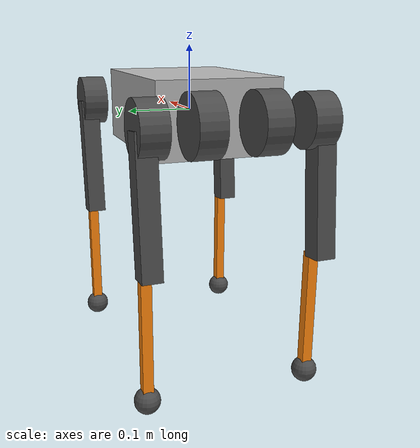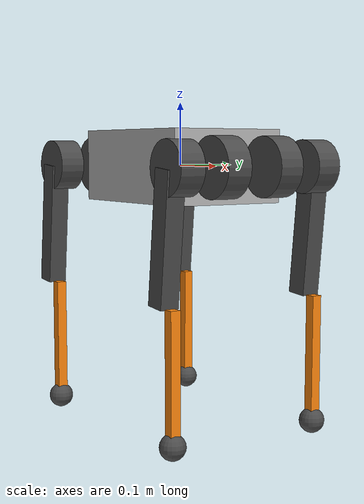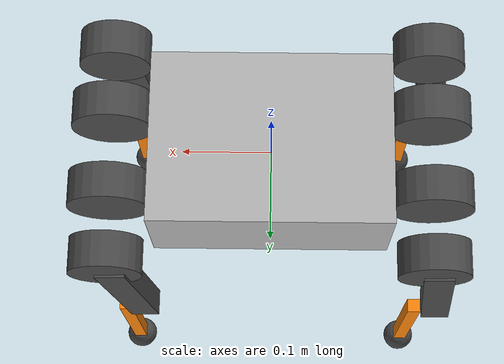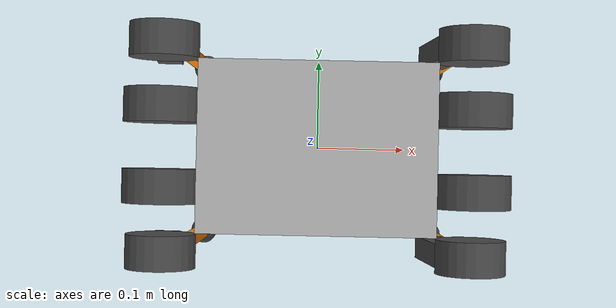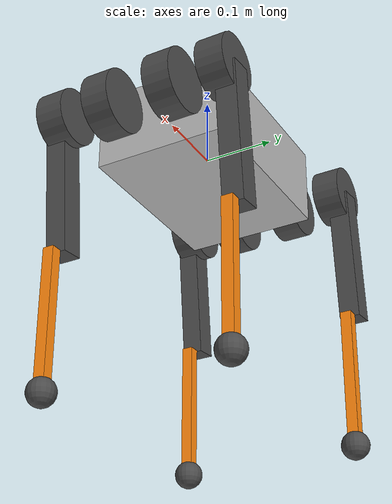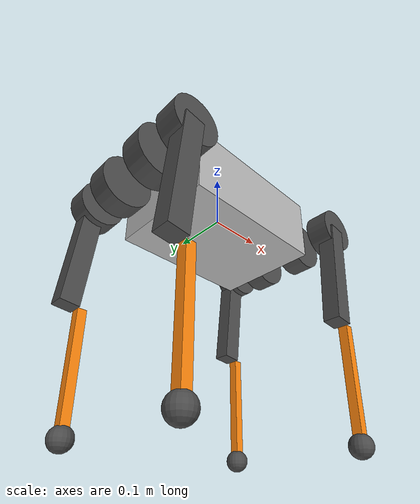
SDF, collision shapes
<sdf version='1.11'>
    <model name='robot'>
        <joint name='anchor_to_world' type='fixed'>
			<parent>world</parent>
			<child>base</child>
			<pose>0 0 0 0 0 0</pose>
		</joint>
        <!-- 悬挂模型，用于调试 -->
        <link name='base'>
            <inertial>
                <pose>0 0.004093178036605658 -0.00049916805324459247 0 0 0</pose>
                <mass>6.0099999999999998</mass>
                <inertia>
                    <ixx>0.01585447031613977</ixx>
                    <ixy>-3.6600000000000002e-05</ixy>
                    <ixz>-6.1099999999999994e-05</ixz>
                    <iyy>0.037800902495840269</iyy>
                    <iyz>-2.7479534109816971e-05</iyz>
                    <izz>0.045655367820299497</izz>
                </inertia>
            </inertial>
            <collision name='base_collision'>
                <pose>0 0 0 0 0 0</pose>
                <geometry>
                    <box>
                        <size>0.26700000000000002 0.19400000000000001 0.114</size>
                    </box>
                </geometry>
            </collision>
            <visual name='base_visual'>
                <pose>0 0 0 0 0 0</pose>
                <geometry>
                    <mesh>
                        <scale>1 1 1</scale>
                        <uri>
                            meshes/trunk.dae</uri>
                    </mesh>
                </geometry>
            </visual>
            <visual name='base_imu_visual_1'>
                <pose>0 0 0 0 0 0</pose>
                <geometry>
                    <box>
                        <size>0.014999999999999999 0.014999999999999999 0.0040000000000000001</size>
                    </box>
                </geometry>
            </visual>
            <sensor name="imu_sensor" type="imu">
                <always_on>1</always_on>
                <update_rate>1</update_rate>
                <visualize>true</visualize>
                <topic>/A1/imu</topic>
            </sensor>
        </link>
        <joint name='LF_HAA' type='revolute'>
            <pose relative_to='base'>0.18049999999999999 0.047 0 0 0 0</pose>
            <parent>base</parent>
            <child>LF_hip</child>
            <axis>
                <xyz>1 0 0</xyz>
                <limit>
                    <lower>-0.80285145591739149</lower>
                    <upper>0.80285145591739149</upper>
                    <effort>33.5</effort>
                    <velocity>21</velocity>
                </limit>
                <dynamics>
                    <damping>0.01</damping>
                    <friction>0.01</friction>
                    <spring_reference>0</spring_reference>
                    <spring_stiffness>0</spring_stiffness>
                </dynamics>
            </axis>
        </joint>
        <link name='LF_hip'>
            <pose relative_to='LF_HAA'>0 0 0 0 0 0</pose>
            <inertial>
                <pose>-0.003875 0.001622 4.1999999999999998e-05 0 0 0</pose>
                <mass>0.59499999999999997</mass>
                <inertia>
                    <ixx>0.00040274700000000001</ixx>
                    <ixy>-8.7090000000000008e-06</ixy>
                    <ixz>-2.9700000000000003e-07</ixz>
                    <iyy>0.00069112299999999998</iyy>
                    <iyz>-5.4499999999999997e-07</iyz>
                    <izz>0.00048791900000000002</izz>
                </inertia>
            </inertial>
            <collision name='LF_hip_collision'>
                <pose>0 0 0 1.5707963267948959 0 0</pose>
                <geometry>
                    <cylinder>
                        <length>0.040000000000000001</length>
                        <radius>0.045999999999999999</radius>
                    </cylinder>
                </geometry>
                <surface>
                    <contact>
                        <ode />
                    </contact>
                    <friction>
                        <ode>
                            <mu>0.20000000000000001</mu>
                            <mu2>0.20000000000000001</mu2>
                        </ode>
                    </friction>
                </surface>
            </collision>
            <visual name='LF_hip_visual'>
                <pose>0 0 0 0 0 0</pose>
                <geometry>
                    <mesh>
                        <scale>1 1 1</scale>
                        <uri>
                            meshes/hip.dae</uri>
                    </mesh>
                </geometry>
                <material>
                    <script>
                        <name>Gazebo/DarkGrey</name>
                        <uri>file://media/materials/scripts/gazebo.material</uri>
                    </script>
                    <diffuse>1 0.529411793 0.0490196086 1</diffuse>
                    <ambient>1 0.529411793 0.0490196086 1</ambient>
                </material>
            </visual>
        </link>
        <joint name='LF_HFE' type='revolute'>
            <pose relative_to='LF_hip'>0 0.083799999999999999 0 0 0 0</pose>
            <parent>LF_hip</parent>
            <child>LF_thigh</child>
            <axis>
                <xyz>0 1 0</xyz>
                <limit>
                    <lower>-1.0471975511965981</lower>
                    <upper>4.1887902047863914</upper>
                    <effort>33.5</effort>
                    <velocity>21</velocity>
                </limit>
                <dynamics>
                    <damping>0.01</damping>
                    <friction>0.01</friction>
                    <spring_reference>0</spring_reference>
                    <spring_stiffness>0</spring_stiffness>
                </dynamics>
            </axis>
        </joint>
        <link name='LF_thigh'>
            <pose relative_to='LF_HFE'>0 0 0 0 0 0</pose>
            <inertial>
                <pose>-0.0035739999999999999 -0.019529000000000001 -0.030322999999999999 0 0 0</pose>
                <mass>0.88800000000000001</mass>
                <inertia>
                    <ixx>0.0052518060000000004</ixx>
                    <ixy>-2.1679999999999998e-06</ixy>
                    <ixz>0.00034688900000000002</ixz>
                    <iyy>0.0050004749999999999</iyy>
                    <iyz>-2.8174000000000002e-05</iyz>
                    <izz>0.0011102</izz>
                </inertia>
            </inertial>
            <collision name='LF_thigh_collision'>
                <pose>-0.014999999999999999 0 -0.10000000000000001 3.1415926535897931
                    1.470796326794896 3.1415926535897931</pose>
                <geometry>
                    <box>
                        <size>0.20000000000000001 0.029999999999999999 0.034000000000000002</size>
                    </box>
                </geometry>
                <surface>
                    <contact>
                        <ode>
                            <kp>1000000</kp>
                            <kd>100</kd>
                        </ode>
                    </contact>
                    <friction>
                        <ode>
                            <mu>0.20000000000000001</mu>
                            <mu2>0.20000000000000001</mu2>
                        </ode>
                    </friction>
                </surface>
            </collision>
            <collision name='LF_thigh_collision_1'>
                <pose>0 -0.0080000000000000002 0 1.5707963267948959 0 0</pose>
                <geometry>
                    <cylinder>
                        <length>0.040000000000000001</length>
                        <radius>0.041000000000000002</radius>
                    </cylinder>
                </geometry>
                <surface>
                    <contact>
                        <ode>
                            <kp>1000000</kp>
                            <kd>100</kd>
                        </ode>
                    </contact>
                    <friction>
                        <ode>
                            <mu>0.20000000000000001</mu>
                            <mu2>0.20000000000000001</mu2>
                        </ode>
                    </friction>
                </surface>
            </collision>
            <visual name='LF_thigh_visual'>
                <pose>0 0 0 0 0 0</pose>
                <geometry>
                    <mesh>
                        <scale>1 1 1</scale>
                        <uri>
                            meshes/thigh.dae</uri>
                    </mesh>
                </geometry>
                <material>
                    <script>
                        <name>Gazebo/DarkGrey</name>
                        <uri>file://media/materials/scripts/gazebo.material</uri>
                    </script>
                    <diffuse>1 0.529411793 0.0490196086 1</diffuse>
                    <ambient>1 0.529411793 0.0490196086 1</ambient>
                </material>
            </visual>
            <self_collide>true</self_collide>
        </link>
        <joint name='LF_KFE' type='revolute'>
            <pose relative_to='LF_thigh'>0 0 -0.20000000000000001 0 0 0</pose>
            <parent>LF_thigh</parent>
            <child>LF_calf</child>
            <axis>
                <xyz>0 1 0</xyz>
                <limit>
                    <lower>-2.6965336943312388</lower>
                    <upper>-0.91629785729702307</upper>
                    <effort>33.5</effort>
                    <velocity>21</velocity>
                </limit>
                <dynamics>
                    <damping>0.01</damping>
                    <friction>0.01</friction>
                    <spring_reference>0</spring_reference>
                    <spring_stiffness>0</spring_stiffness>
                </dynamics>
            </axis>
        </joint>
        <link name='LF_calf'>
            <pose relative_to='LF_KFE'>0 0 0 0 0 0</pose>
            <inertial>
                <pose>0.0071050000000000002 -0.00023900000000000001 -0.096933000000000005 0 0 0</pose>
                <mass>0.151</mass>
                <inertia>
                    <ixx>0.0023447580000000002</ixx>
                    <ixy>0</ixy>
                    <ixz>-0.00014127500000000001</ixz>
                    <iyy>0.002360755</iyy>
                    <iyz>0</iyz>
                    <izz>3.1158000000000002e-05</izz>
                </inertia>
            </inertial>
            <collision name='LF_calf_collision'>
                <pose>0 0 -0.10000000000000001 0 1.5707963267948966 0</pose>
                <geometry>
                    <box>
                        <size>0.20000000000000001 0.016 0.016</size>
                    </box>
                </geometry>
                <surface>
                    <contact>
                        <ode />
                    </contact>
                    <friction>
                        <ode>
                            <mu>0.59999999999999998</mu>
                            <mu2>0.59999999999999998</mu2>
                        </ode>
                    </friction>
                </surface>
            </collision>
            <visual name='LF_calf_visual'>
                <pose>0 0 0 0 0 0</pose>
                <geometry>
                    <mesh>
                        <scale>1 1 1</scale>
                        <uri>
                            meshes/calf.dae</uri>
                    </mesh>
                </geometry>
                <material>
                    <diffuse>1 0.529411793 0.0490196086 1</diffuse>
                    <ambient>1 0.529411793 0.0490196086 1</ambient>
                </material>
            </visual>
            <self_collide>true</self_collide>
        </link>
        <joint name='LF_foot_fixed' type='revolute'>
            <pose relative_to='LF_calf'>0 0 -0.20000000000000001 0 0 0</pose>
            <parent>LF_calf</parent>
            <child>LF_FOOT</child>
            <axis>
                <limit>
                    <lower>0</lower>
                    <upper>0</upper>
                </limit>
                <dynamics>
                    <damping>0.01</damping>
                    <friction>0.01</friction>
                    <spring_reference>0</spring_reference>
                    <spring_stiffness>0</spring_stiffness>
                </dynamics>
                <xyz>0 0 1</xyz>
            </axis>
            <physics>
                <ode>
                    <limit>
                        <cfm>0</cfm>
                        <erp>0.20000000000000001</erp>
                    </limit>
                </ode>
            </physics>
        </joint>
        <link name='LF_FOOT'>
            <pose relative_to='LF_foot_fixed'>0 0 0 0 0 0</pose>
            <inertial>
                <pose>0 0 0 0 0 0</pose>
                <mass>0.059999999999999998</mass>
                <inertia>
                    <ixx>9.6000000000000013e-06</ixx>
                    <ixy>0</ixy>
                    <ixz>0</ixz>
                    <iyy>9.6000000000000013e-06</iyy>
                    <iyz>0</iyz>
                    <izz>9.6000000000000013e-06</izz>
                </inertia>
            </inertial>
            <collision name='LF_FOOT_collision'>
                <pose>0 0 0 0 0 0</pose>
                <geometry>
                    <sphere>
                        <radius>0.02</radius>
                    </sphere>
                </geometry>
                <surface>
                    <contact>
                        <ode>
                            <kp>1000000</kp>
                            <kd>100</kd>
                        </ode>
                    </contact>
                    <friction>
                        <ode>
                            <mu>0.59999999999999998</mu>
                            <mu2>0.59999999999999998</mu2>
                        </ode>
                    </friction>
                </surface>
            </collision>
            <visual name='LF_FOOT_visual'>
                <pose>0 0 0 0 0 0</pose>
                <geometry>
                    <sphere>
                        <radius>0.01</radius>
                    </sphere>
                </geometry>
                <material>
                    <script>
                        <name>Gazebo/DarkGrey</name>
                        <uri>file://media/materials/scripts/gazebo.material</uri>
                    </script>
                    <diffuse>1 0.529411793 0.0490196086 1</diffuse>
                    <ambient>1 0.529411793 0.0490196086 1</ambient>
                </material>
            </visual>
            <self_collide>true</self_collide>
        </link>
        <joint name='LH_HAA' type='revolute'>
            <pose relative_to='base'>-0.18049999999999999 0.047 0 0 0 0</pose>
            <parent>base</parent>
            <child>LH_hip</child>
            <axis>
                <xyz>1 0 0</xyz>
                <limit>
                    <lower>-0.80285145591739149</lower>
                    <upper>0.80285145591739149</upper>
                    <effort>33.5</effort>
                    <velocity>21</velocity>
                </limit>
                <dynamics>
                    <damping>0.01</damping>
                    <friction>0.01</friction>
                    <spring_reference>0</spring_reference>
                    <spring_stiffness>0</spring_stiffness>
                </dynamics>
            </axis>
        </joint>
        <link name='LH_hip'>
            <pose relative_to='LH_HAA'>0 0 0 0 0 0</pose>
            <inertial>
                <pose>0.003875 0.001622 4.1999999999999998e-05 0 0 0</pose>
                <mass>0.59499999999999997</mass>
                <inertia>
                    <ixx>0.00040274700000000001</ixx>
                    <ixy>8.7090000000000008e-06</ixy>
                    <ixz>2.9700000000000003e-07</ixz>
                    <iyy>0.00069112299999999998</iyy>
                    <iyz>-5.4499999999999997e-07</iyz>
                    <izz>0.00048791900000000002</izz>
                </inertia>
            </inertial>
            <collision name='LH_hip_collision'>
                <pose>0 0 0 1.5707963267948959 0 0</pose>
                <geometry>
                    <cylinder>
                        <length>0.040000000000000001</length>
                        <radius>0.045999999999999999</radius>
                    </cylinder>
                </geometry>
                <surface>
                    <contact>
                        <ode />
                    </contact>
                    <friction>
                        <ode>
                            <mu>0.20000000000000001</mu>
                            <mu2>0.20000000000000001</mu2>
                        </ode>
                    </friction>
                </surface>
            </collision>
            <visual name='LH_hip_visual'>
                <pose>0 0 0 3.1415926535897931 1.224646799147353e-16 3.1415926535897931</pose>
                <geometry>
                    <mesh>
                        <scale>1 1 1</scale>
                        <uri>
                            meshes/hip.dae</uri>
                    </mesh>
                </geometry>
                <material>
                    <script>
                        <name>Gazebo/DarkGrey</name>
                        <uri>file://media/materials/scripts/gazebo.material</uri>
                    </script>
                    <diffuse>1 0.529411793 0.0490196086 1</diffuse>
                    <ambient>1 0.529411793 0.0490196086 1</ambient>
                </material>
            </visual>
        </link>
        <joint name='LH_HFE' type='revolute'>
            <pose relative_to='LH_hip'>0 0.083799999999999999 0 0 0 0</pose>
            <parent>LH_hip</parent>
            <child>LH_thigh</child>
            <axis>
                <xyz>0 1 0</xyz>
                <limit>
                    <lower>-1.0471975511965981</lower>
                    <upper>4.1887902047863914</upper>
                    <effort>33.5</effort>
                    <velocity>21</velocity>
                </limit>
                <dynamics>
                    <damping>0.01</damping>
                    <friction>0.01</friction>
                    <spring_reference>0</spring_reference>
                    <spring_stiffness>0</spring_stiffness>
                </dynamics>
            </axis>
        </joint>
        <link name='LH_thigh'>
            <pose relative_to='LH_HFE'>0 0 0 0 0 0</pose>
            <inertial>
                <pose>-0.0035739999999999999 -0.019529000000000001 -0.030322999999999999 0 0 0</pose>
                <mass>0.88800000000000001</mass>
                <inertia>
                    <ixx>0.0052518060000000004</ixx>
                    <ixy>-2.1679999999999998e-06</ixy>
                    <ixz>0.00034688900000000002</ixz>
                    <iyy>0.0050004749999999999</iyy>
                    <iyz>-2.8174000000000002e-05</iyz>
                    <izz>0.0011102</izz>
                </inertia>
            </inertial>
            <collision name='LH_thigh_collision'>
                <pose>-0.014999999999999999 0 -0.10000000000000001 3.1415926535897931
                    1.470796326794896 3.1415926535897931</pose>
                <geometry>
                    <box>
                        <size>0.20000000000000001 0.029999999999999999 0.034000000000000002</size>
                    </box>
                </geometry>
                <surface>
                    <contact>
                        <ode>
                            <kp>1000000</kp>
                            <kd>100</kd>
                        </ode>
                    </contact>
                    <friction>
                        <ode>
                            <mu>0.20000000000000001</mu>
                            <mu2>0.20000000000000001</mu2>
                        </ode>
                    </friction>
                </surface>
            </collision>
            <collision name='LH_thigh_collision_1'>
                <pose>0 -0.0080000000000000002 0 1.5707963267948959 0 0</pose>
                <geometry>
                    <cylinder>
                        <length>0.040000000000000001</length>
                        <radius>0.041000000000000002</radius>
                    </cylinder>
                </geometry>
                <surface>
                    <contact>
                        <ode>
                            <kp>1000000</kp>
                            <kd>100</kd>
                        </ode>
                    </contact>
                    <friction>
                        <ode>
                            <mu>0.20000000000000001</mu>
                            <mu2>0.20000000000000001</mu2>
                        </ode>
                    </friction>
                </surface>
            </collision>
            <visual name='LH_thigh_visual'>
                <pose>0 0 0 0 0 0</pose>
                <geometry>
                    <mesh>
                        <scale>1 1 1</scale>
                        <uri>
                            meshes/thigh.dae</uri>
                    </mesh>
                </geometry>
                <material>
                    <script>
                        <name>Gazebo/DarkGrey</name>
                        <uri>file://media/materials/scripts/gazebo.material</uri>
                    </script>
                    <diffuse>1 0.529411793 0.0490196086 1</diffuse>
                    <ambient>1 0.529411793 0.0490196086 1</ambient>
                </material>
            </visual>
            <self_collide>true</self_collide>
        </link>
        <joint name='LH_KFE' type='revolute'>
            <pose relative_to='LH_thigh'>0 0 -0.20000000000000001 0 0 0</pose>
            <parent>LH_thigh</parent>
            <child>LH_calf</child>
            <axis>
                <xyz>0 1 0</xyz>
                <limit>
                    <lower>-2.6965336943312388</lower>
                    <upper>-0.91629785729702307</upper>
                    <effort>33.5</effort>
                    <velocity>21</velocity>
                </limit>
                <dynamics>
                    <damping>0.01</damping>
                    <friction>0.01</friction>
                    <spring_reference>0</spring_reference>
                    <spring_stiffness>0</spring_stiffness>
                </dynamics>
            </axis>
        </joint>
        <link name='LH_calf'>
            <pose relative_to='LH_KFE'>0 0 0 0 0 0</pose>
            <inertial>
                <pose>0.0071050000000000002 -0.00023900000000000001 -0.096933000000000005 0 0 0</pose>
                <mass>0.151</mass>
                <inertia>
                    <ixx>0.0023447580000000002</ixx>
                    <ixy>0</ixy>
                    <ixz>-0.00014127500000000001</ixz>
                    <iyy>0.002360755</iyy>
                    <iyz>0</iyz>
                    <izz>3.1158000000000002e-05</izz>
                </inertia>
            </inertial>
            <collision name='LH_calf_collision'>
                <pose>0 0 -0.10000000000000001 0 1.5707963267948966 0</pose>
                <geometry>
                    <box>
                        <size>0.20000000000000001 0.016 0.016</size>
                    </box>
                </geometry>
                <surface>
                    <contact>
                        <ode />
                    </contact>
                    <friction>
                        <ode>
                            <mu>0.59999999999999998</mu>
                            <mu2>0.59999999999999998</mu2>
                        </ode>
                    </friction>
                </surface>
            </collision>
            <visual name='LH_calf_visual'>
                <pose>0 0 0 0 0 0</pose>
                <geometry>
                    <mesh>
                        <scale>1 1 1</scale>
                        <uri>
                            meshes/calf.dae</uri>
                    </mesh>
                </geometry>
                <material>
                    <diffuse>1 0.529411793 0.0490196086 1</diffuse>
                    <ambient>1 0.529411793 0.0490196086 1</ambient>
                </material>
            </visual>
            <self_collide>true</self_collide>
        </link>
        <joint name='LH_foot_fixed' type='revolute'>
            <pose relative_to='LH_calf'>0 0 -0.20000000000000001 0 0 0</pose>
            <parent>LH_calf</parent>
            <child>LH_FOOT</child>
            <axis>
                <limit>
                    <lower>0</lower>
                    <upper>0</upper>
                </limit>
                <dynamics>
                    <damping>0.01</damping>
                    <friction>0.01</friction>
                    <spring_reference>0</spring_reference>
                    <spring_stiffness>0</spring_stiffness>
                </dynamics>
                <xyz>0 0 1</xyz>
            </axis>
            <physics>
                <ode>
                    <limit>
                        <cfm>0</cfm>
                        <erp>0.20000000000000001</erp>
                    </limit>
                </ode>
            </physics>
        </joint>
        <link name='LH_FOOT'>
            <pose relative_to='LH_foot_fixed'>0 0 0 0 0 0</pose>
            <inertial>
                <pose>0 0 0 0 0 0</pose>
                <mass>0.059999999999999998</mass>
                <inertia>
                    <ixx>9.6000000000000013e-06</ixx>
                    <ixy>0</ixy>
                    <ixz>0</ixz>
                    <iyy>9.6000000000000013e-06</iyy>
                    <iyz>0</iyz>
                    <izz>9.6000000000000013e-06</izz>
                </inertia>
            </inertial>
            <collision name='LH_FOOT_collision'>
                <pose>0 0 0 0 0 0</pose>
                <geometry>
                    <sphere>
                        <radius>0.02</radius>
                    </sphere>
                </geometry>
                <surface>
                    <contact>
                        <ode>
                            <kp>1000000</kp>
                            <kd>100</kd>
                        </ode>
                    </contact>
                    <friction>
                        <ode>
                            <mu>0.59999999999999998</mu>
                            <mu2>0.59999999999999998</mu2>
                        </ode>
                    </friction>
                </surface>
            </collision>
            <visual name='LH_FOOT_visual'>
                <pose>0 0 0 0 0 0</pose>
                <geometry>
                    <sphere>
                        <radius>0.01</radius>
                    </sphere>
                </geometry>
                <material>
                    <script>
                        <name>Gazebo/DarkGrey</name>
                        <uri>file://media/materials/scripts/gazebo.material</uri>
                    </script>
                    <diffuse>1 0.529411793 0.0490196086 1</diffuse>
                    <ambient>1 0.529411793 0.0490196086 1</ambient>
                </material>
            </visual>
            <self_collide>true</self_collide>
        </link>
        <joint name='RF_HAA' type='revolute'>
            <pose relative_to='base'>0.18049999999999999 -0.047 0 0 0 0</pose>
            <parent>base</parent>
            <child>RF_hip</child>
            <axis>
                <xyz>1 0 0</xyz>
                <limit>
                    <lower>-0.80285145591739149</lower>
                    <upper>0.80285145591739149</upper>
                    <effort>33.5</effort>
                    <velocity>21</velocity>
                </limit>
                <dynamics>
                    <damping>0.01</damping>
                    <friction>0.01</friction>
                    <spring_reference>0</spring_reference>
                    <spring_stiffness>0</spring_stiffness>
                </dynamics>
            </axis>
        </joint>
        <link name='RF_hip'>
            <pose relative_to='RF_HAA'>0 0 0 0 0 0</pose>
            <inertial>
                <pose>-0.003875 -0.001622 4.1999999999999998e-05 0 0 0</pose>
                <mass>0.59499999999999997</mass>
                <inertia>
                    <ixx>0.00040274700000000001</ixx>
                    <ixy>8.7090000000000008e-06</ixy>
                    <ixz>-2.9700000000000003e-07</ixz>
                    <iyy>0.00069112299999999998</iyy>
                    <iyz>5.4499999999999997e-07</iyz>
                    <izz>0.00048791900000000002</izz>
                </inertia>
            </inertial>
            <collision name='RF_hip_collision'>
                <pose>0 0 0 1.5707963267948959 0 0</pose>
                <geometry>
                    <cylinder>
                        <length>0.040000000000000001</length>
                        <radius>0.045999999999999999</radius>
                    </cylinder>
                </geometry>
                <surface>
                    <contact>
                        <ode />
                    </contact>
                    <friction>
                        <ode>
                            <mu>0.20000000000000001</mu>
                            <mu2>0.20000000000000001</mu2>
                        </ode>
                    </friction>
                </surface>
            </collision>
            <visual name='RF_hip_visual'>
                <pose>0 0 0 3.1415926535897931 0 0</pose>
                <geometry>
                    <mesh>
                        <scale>1 1 1</scale>
                        <uri>
                            meshes/hip.dae</uri>
                    </mesh>
                </geometry>
                <material>
                    <script>
                        <name>Gazebo/DarkGrey</name>
                        <uri>file://media/materials/scripts/gazebo.material</uri>
                    </script>
                    <diffuse>1 0.529411793 0.0490196086 1</diffuse>
                    <ambient>1 0.529411793 0.0490196086 1</ambient>
                </material>
            </visual>
        </link>
        <joint name='RF_HFE' type='revolute'>
            <pose relative_to='RF_hip'>0 -0.083799999999999999 0 0 0 0</pose>
            <parent>RF_hip</parent>
            <child>RF_thigh</child>
            <axis>
                <xyz>0 1 0</xyz>
                <limit>
                    <lower>-1.0471975511965981</lower>
                    <upper>4.1887902047863914</upper>
                    <effort>33.5</effort>
                    <velocity>21</velocity>
                </limit>
                <dynamics>
                    <damping>0.01</damping>
                    <friction>0.01</friction>
                    <spring_reference>0</spring_reference>
                    <spring_stiffness>0</spring_stiffness>
                </dynamics>
            </axis>
        </joint>
        <link name='RF_thigh'>
            <pose relative_to='RF_HFE'>0 0 0 0 0 0</pose>
            <inertial>
                <pose>-0.0035739999999999999 0.019529000000000001 -0.030322999999999999 0 0 0</pose>
                <mass>0.88800000000000001</mass>
                <inertia>
                    <ixx>0.0052518060000000004</ixx>
                    <ixy>2.1679999999999998e-06</ixy>
                    <ixz>0.00034688900000000002</ixz>
                    <iyy>0.0050004749999999999</iyy>
                    <iyz>2.8174000000000002e-05</iyz>
                    <izz>0.0011102</izz>
                </inertia>
            </inertial>
            <collision name='RF_thigh_collision'>
                <pose>-0.014999999999999999 0 -0.10000000000000001 3.1415926535897931
                    1.470796326794896 3.1415926535897931</pose>
                <geometry>
                    <box>
                        <size>0.20000000000000001 0.029999999999999999 0.034000000000000002</size>
                    </box>
                </geometry>
                <surface>
                    <contact>
                        <ode>
                            <kp>1000000</kp>
                            <kd>100</kd>
                        </ode>
                    </contact>
                    <friction>
                        <ode>
                            <mu>0.20000000000000001</mu>
                            <mu2>0.20000000000000001</mu2>
                        </ode>
                    </friction>
                </surface>
            </collision>
            <collision name='RF_thigh_collision_1'>
                <pose>0 0.0080000000000000002 0 1.5707963267948959 0 0</pose>
                <geometry>
                    <cylinder>
                        <length>0.040000000000000001</length>
                        <radius>0.041000000000000002</radius>
                    </cylinder>
                </geometry>
                <surface>
                    <contact>
                        <ode>
                            <kp>1000000</kp>
                            <kd>100</kd>
                        </ode>
                    </contact>
                    <friction>
                        <ode>
                            <mu>0.20000000000000001</mu>
                            <mu2>0.20000000000000001</mu2>
                        </ode>
                    </friction>
                </surface>
            </collision>
            <visual name='RF_thigh_visual'>
                <pose>0 0 0 0 0 0</pose>
                <geometry>
                    <mesh>
                        <scale>1 1 1</scale>
                        <uri>
                            meshes/thigh_mirror.dae</uri>
                    </mesh>
                </geometry>
                <material>
                    <script>
                        <name>Gazebo/DarkGrey</name>
                        <uri>file://media/materials/scripts/gazebo.material</uri>
                    </script>
                    <diffuse>1 0.529411793 0.0490196086 1</diffuse>
                    <ambient>1 0.529411793 0.0490196086 1</ambient>
                </material>
            </visual>
            <self_collide>true</self_collide>
        </link>
        <joint name='RF_KFE' type='revolute'>
            <pose relative_to='RF_thigh'>0 0 -0.20000000000000001 0 0 0</pose>
            <parent>RF_thigh</parent>
            <child>RF_calf</child>
            <axis>
                <xyz>0 1 0</xyz>
                <limit>
                    <lower>-2.6965336943312388</lower>
                    <upper>-0.91629785729702307</upper>
                    <effort>33.5</effort>
                    <velocity>21</velocity>
                </limit>
                <dynamics>
                    <damping>0.01</damping>
                    <friction>0.01</friction>
                    <spring_reference>0</spring_reference>
                    <spring_stiffness>0</spring_stiffness>
                </dynamics>
            </axis>
        </joint>
        <link name='RF_calf'>
            <pose relative_to='RF_KFE'>0 0 0 0 0 0</pose>
            <inertial>
                <pose>0.0071050000000000002 -0.00023900000000000001 -0.096933000000000005 0 0 0</pose>
                <mass>0.151</mass>
                <inertia>
                    <ixx>0.0023447580000000002</ixx>
                    <ixy>0</ixy>
                    <ixz>-0.00014127500000000001</ixz>
                    <iyy>0.002360755</iyy>
                    <iyz>0</iyz>
                    <izz>3.1158000000000002e-05</izz>
                </inertia>
            </inertial>
            <collision name='RF_calf_collision'>
                <pose>0 0 -0.10000000000000001 0 1.5707963267948966 0</pose>
                <geometry>
                    <box>
                        <size>0.20000000000000001 0.016 0.016</size>
                    </box>
                </geometry>
                <surface>
                    <contact>
                        <ode />
                    </contact>
                    <friction>
                        <ode>
                            <mu>0.59999999999999998</mu>
                            <mu2>0.59999999999999998</mu2>
                        </ode>
                    </friction>
                </surface>
            </collision>
            <visual name='RF_calf_visual'>
                <pose>0 0 0 0 0 0</pose>
                <geometry>
                    <mesh>
                        <scale>1 1 1</scale>
                        <uri>
                            meshes/calf.dae</uri>
                    </mesh>
                </geometry>
                <material>
                    <diffuse>1 0.529411793 0.0490196086 1</diffuse>
                    <ambient>1 0.529411793 0.0490196086 1</ambient>
                </material>
            </visual>
            <self_collide>true</self_collide>
        </link>
        <joint name='RF_foot_fixed' type='revolute'>
            <pose relative_to='RF_calf'>0 0 -0.20000000000000001 0 0 0</pose>
            <parent>RF_calf</parent>
            <child>RF_FOOT</child>
            <axis>
                <limit>
                    <lower>0</lower>
                    <upper>0</upper>
                </limit>
                <dynamics>
                    <damping>0.01</damping>
                    <friction>0.01</friction>
                    <spring_reference>0</spring_reference>
                    <spring_stiffness>0</spring_stiffness>
                </dynamics>
                <xyz>0 0 1</xyz>
            </axis>
            <physics>
                <ode>
                    <limit>
                        <cfm>0</cfm>
                        <erp>0.20000000000000001</erp>
                    </limit>
                </ode>
            </physics>
        </joint>
        <link name='RF_FOOT'>
            <pose relative_to='RF_foot_fixed'>0 0 0 0 0 0</pose>
            <inertial>
                <pose>0 0 0 0 0 0</pose>
                <mass>0.059999999999999998</mass>
                <inertia>
                    <ixx>9.6000000000000013e-06</ixx>
                    <ixy>0</ixy>
                    <ixz>0</ixz>
                    <iyy>9.6000000000000013e-06</iyy>
                    <iyz>0</iyz>
                    <izz>9.6000000000000013e-06</izz>
                </inertia>
            </inertial>
            <collision name='RF_FOOT_collision'>
                <pose>0 0 0 0 0 0</pose>
                <geometry>
                    <sphere>
                        <radius>0.02</radius>
                    </sphere>
                </geometry>
                <surface>
                    <contact>
                        <ode>
                            <kp>1000000</kp>
                            <kd>100</kd>
                        </ode>
                    </contact>
                    <friction>
                        <ode>
                            <mu>0.59999999999999998</mu>
                            <mu2>0.59999999999999998</mu2>
                        </ode>
                    </friction>
                </surface>
            </collision>
            <visual name='RF_FOOT_visual'>
                <pose>0 0 0 0 0 0</pose>
                <geometry>
                    <sphere>
                        <radius>0.01</radius>
                    </sphere>
                </geometry>
                <material>
                    <script>
                        <name>Gazebo/DarkGrey</name>
                        <uri>file://media/materials/scripts/gazebo.material</uri>
                    </script>
                    <diffuse>1 0.529411793 0.0490196086 1</diffuse>
                    <ambient>1 0.529411793 0.0490196086 1</ambient>
                </material>
            </visual>
            <self_collide>true</self_collide>
        </link>
        <joint name='RH_HAA' type='revolute'>
            <pose relative_to='base'>-0.18049999999999999 -0.047 0 0 0 0</pose>
            <parent>base</parent>
            <child>RH_hip</child>
            <axis>
                <xyz>1 0 0</xyz>
                <limit>
                    <lower>-0.80285145591739149</lower>
                    <upper>0.80285145591739149</upper>
                    <effort>33.5</effort>
                    <velocity>21</velocity>
                </limit>
                <dynamics>
                    <damping>0.01</damping>
                    <friction>0.01</friction>
                    <spring_reference>0</spring_reference>
                    <spring_stiffness>0</spring_stiffness>
                </dynamics>
            </axis>
        </joint>
        <link name='RH_hip'>
            <pose relative_to='RH_HAA'>0 0 0 0 0 0</pose>
            <inertial>
                <pose>0.003875 -0.001622 4.1999999999999998e-05 0 0 0</pose>
                <mass>0.59499999999999997</mass>
                <inertia>
                    <ixx>0.00040274700000000001</ixx>
                    <ixy>-8.7090000000000008e-06</ixy>
                    <ixz>2.9700000000000003e-07</ixz>
                    <iyy>0.00069112299999999998</iyy>
                    <iyz>5.4499999999999997e-07</iyz>
                    <izz>0.00048791900000000002</izz>
                </inertia>
            </inertial>
            <collision name='RH_hip_collision'>
                <pose>0 0 0 1.5707963267948959 0 0</pose>
                <geometry>
                    <cylinder>
                        <length>0.040000000000000001</length>
                        <radius>0.045999999999999999</radius>
                    </cylinder>
                </geometry>
                <surface>
                    <contact>
                        <ode />
                    </contact>
                    <friction>
                        <ode>
                            <mu>0.20000000000000001</mu>
                            <mu2>0.20000000000000001</mu2>
                        </ode>
                    </friction>
                </surface>
            </collision>
            <visual name='RH_hip_visual'>
                <pose>0 0 0 -1.224646799147353e-16 1.224646799147353e-16 3.1415926535897931</pose>
                <geometry>
                    <mesh>
                        <scale>1 1 1</scale>
                        <uri>
                            meshes/hip.dae</uri>
                    </mesh>
                </geometry>
                <material>
                    <script>
                        <name>Gazebo/DarkGrey</name>
                        <uri>file://media/materials/scripts/gazebo.material</uri>
                    </script>
                    <diffuse>1 0.529411793 0.0490196086 1</diffuse>
                    <ambient>1 0.529411793 0.0490196086 1</ambient>
                </material>
            </visual>
        </link>
        <joint name='RH_HFE' type='revolute'>
            <pose relative_to='RH_hip'>0 -0.083799999999999999 0 0 0 0</pose>
            <parent>RH_hip</parent>
            <child>RH_thigh</child>
            <axis>
                <xyz>0 1 0</xyz>
                <limit>
                    <lower>-1.0471975511965981</lower>
                    <upper>4.1887902047863914</upper>
                    <effort>33.5</effort>
                    <velocity>21</velocity>
                </limit>
                <dynamics>
                    <damping>0.01</damping>
                    <friction>0.01</friction>
                    <spring_reference>0</spring_reference>
                    <spring_stiffness>0</spring_stiffness>
                </dynamics>
            </axis>
        </joint>
        <link name='RH_thigh'>
            <pose relative_to='RH_HFE'>0 0 0 0 0 0</pose>
            <inertial>
                <pose>-0.0035739999999999999 0.019529000000000001 -0.030322999999999999 0 0 0</pose>
                <mass>0.88800000000000001</mass>
                <inertia>
                    <ixx>0.0052518060000000004</ixx>
                    <ixy>2.1679999999999998e-06</ixy>
                    <ixz>0.00034688900000000002</ixz>
                    <iyy>0.0050004749999999999</iyy>
                    <iyz>2.8174000000000002e-05</iyz>
                    <izz>0.0011102</izz>
                </inertia>
            </inertial>
            <collision name='RH_thigh_collision'>
                <pose>-0.014999999999999999 0 -0.10000000000000001 3.1415926535897931
                    1.470796326794896 3.1415926535897931</pose>
                <geometry>
                    <box>
                        <size>0.20000000000000001 0.029999999999999999 0.034000000000000002</size>
                    </box>
                </geometry>
                <surface>
                    <contact>
                        <ode>
                            <kp>1000000</kp>
                            <kd>100</kd>
                        </ode>
                    </contact>
                    <friction>
                        <ode>
                            <mu>0.20000000000000001</mu>
                            <mu2>0.20000000000000001</mu2>
                        </ode>
                    </friction>
                </surface>
            </collision>
            <collision name='RH_thigh_collision_1'>
                <pose>0 0.0080000000000000002 0 1.5707963267948959 0 0</pose>
                <geometry>
                    <cylinder>
                        <length>0.040000000000000001</length>
                        <radius>0.041000000000000002</radius>
                    </cylinder>
                </geometry>
                <surface>
                    <contact>
                        <ode>
                            <kp>1000000</kp>
                            <kd>100</kd>
                        </ode>
                    </contact>
                    <friction>
                        <ode>
                            <mu>0.20000000000000001</mu>
                            <mu2>0.20000000000000001</mu2>
                        </ode>
                    </friction>
                </surface>
            </collision>
            <visual name='RH_thigh_visual'>
                <pose>0 0 0 0 0 0</pose>
                <geometry>
                    <mesh>
                        <scale>1 1 1</scale>
                        <uri>
                            meshes/thigh_mirror.dae</uri>
                    </mesh>
                </geometry>
                <material>
                    <script>
                        <name>Gazebo/DarkGrey</name>
                        <uri>file://media/materials/scripts/gazebo.material</uri>
                    </script>
                    <diffuse>1 0.529411793 0.0490196086 1</diffuse>
                    <ambient>1 0.529411793 0.0490196086 1</ambient>
                </material>
            </visual>
            <self_collide>true</self_collide>
        </link>
        <joint name='RH_KFE' type='revolute'>
            <pose relative_to='RH_thigh'>0 0 -0.20000000000000001 0 0 0</pose>
            <parent>RH_thigh</parent>
            <child>RH_calf</child>
            <axis>
                <xyz>0 1 0</xyz>
                <limit>
                    <lower>-2.6965336943312388</lower>
                    <upper>-0.91629785729702307</upper>
                    <effort>33.5</effort>
                    <velocity>21</velocity>
                </limit>
                <dynamics>
                    <damping>0.01</damping>
                    <friction>0.01</friction>
                    <spring_reference>0</spring_reference>
                    <spring_stiffness>0</spring_stiffness>
                </dynamics>
            </axis>
        </joint>
        <link name='RH_calf'>
            <pose relative_to='RH_KFE'>0 0 0 0 0 0</pose>
            <inertial>
                <pose>0.0071050000000000002 -0.00023900000000000001 -0.096933000000000005 0 0 0</pose>
                <mass>0.151</mass>
                <inertia>
                    <ixx>0.0023447580000000002</ixx>
                    <ixy>0</ixy>
                    <ixz>-0.00014127500000000001</ixz>
                    <iyy>0.002360755</iyy>
                    <iyz>0</iyz>
                    <izz>3.1158000000000002e-05</izz>
                </inertia>
            </inertial>
            <collision name='RH_calf_collision'>
                <pose>0 0 -0.10000000000000001 0 1.5707963267948966 0</pose>
                <geometry>
                    <box>
                        <size>0.20000000000000001 0.016 0.016</size>
                    </box>
                </geometry>
                <surface>
                    <contact>
                        <ode />
                    </contact>
                    <friction>
                        <ode>
                            <mu>0.59999999999999998</mu>
                            <mu2>0.59999999999999998</mu2>
                        </ode>
                    </friction>
                </surface>
            </collision>
            <visual name='RH_calf_visual'>
                <pose>0 0 0 0 0 0</pose>
                <geometry>
                    <mesh>
                        <scale>1 1 1</scale>
                        <uri>
                            meshes/calf.dae</uri>
                    </mesh>
                </geometry>
                <material>
                    <diffuse>1 0.529411793 0.0490196086 1</diffuse>
                    <ambient>1 0.529411793 0.0490196086 1</ambient>
                </material>
            </visual>
            <self_collide>true</self_collide>
        </link>
        <joint name='RH_foot_fixed' type='revolute'>
            <pose relative_to='RH_calf'>0 0 -0.20000000000000001 0 0 0</pose>
            <parent>RH_calf</parent>
            <child>RH_FOOT</child>
            <axis>
                <limit>
                    <lower>0</lower>
                    <upper>0</upper>
                </limit>
                <dynamics>
                    <damping>0.01</damping>
                    <friction>0.01</friction>
                    <spring_reference>0</spring_reference>
                    <spring_stiffness>0</spring_stiffness>
                </dynamics>
                <xyz>0 0 1</xyz>
            </axis>
            <physics>
                <ode>
                    <limit>
                        <cfm>0</cfm>
                        <erp>0.20000000000000001</erp>
                    </limit>
                </ode>
            </physics>
        </joint>
        <link name='RH_FOOT'>
            <pose relative_to='RH_foot_fixed'>0 0 0 0 0 0</pose>
            <inertial>
                <pose>0 0 0 0 0 0</pose>
                <mass>0.059999999999999998</mass>
                <inertia>
                    <ixx>9.6000000000000013e-06</ixx>
                    <ixy>0</ixy>
                    <ixz>0</ixz>
                    <iyy>9.6000000000000013e-06</iyy>
                    <iyz>0</iyz>
                    <izz>9.6000000000000013e-06</izz>
                </inertia>
            </inertial>
            <collision name='RH_FOOT_collision'>
                <pose>0 0 0 0 0 0</pose>
                <geometry>
                    <sphere>
                        <radius>0.02</radius>
                    </sphere>
                </geometry>
                <surface>
                    <contact>
                        <ode>
                            <kp>1000000</kp>
                            <kd>100</kd>
                        </ode>
                    </contact>
                    <friction>
                        <ode>
                            <mu>0.59999999999999998</mu>
                            <mu2>0.59999999999999998</mu2>
                        </ode>
                    </friction>
                </surface>
            </collision>
            <visual name='RH_FOOT_visual'>
                <pose>0 0 0 0 0 0</pose>
                <geometry>
                    <sphere>
                        <radius>0.01</radius>
                    </sphere>
                </geometry>
                <material>
                    <script>
                        <name>Gazebo/DarkGrey</name>
                        <uri>file://media/materials/scripts/gazebo.material</uri>
                    </script>
                    <diffuse>1 0.529411793 0.0490196086 1</diffuse>
                    <ambient>1 0.529411793 0.0490196086 1</ambient>
                </material>
            </visual>
            <self_collide>true</self_collide>
        </link>
        <frame name='base_imu_joint' attached_to='base'>
            <pose>0 0 0 0 0 0</pose>
        </frame>
        <frame name='base_imu' attached_to='base_imu_joint'>
            <pose>0 0 0 0 0 0</pose>
        </frame>

        <plugin filename="libgz_ros2_control-system.so"
            name="gz_ros2_control::GazeboSimROS2ControlPlugin">
            <parameters>/home/luo/Project/Horse/Luo_ros2_control/src/legged_bringup/launch/legged_controller.yaml</parameters>
            <hold_joints>false</hold_joints>
        </plugin>
        <!-- 关节控制插件 -->

        <plugin filename="gz-sim-imu-system"
            name="gz::sim::systems::Imu">
        </plugin>
        <!-- imu插件 -->
    </model>
</sdf>
